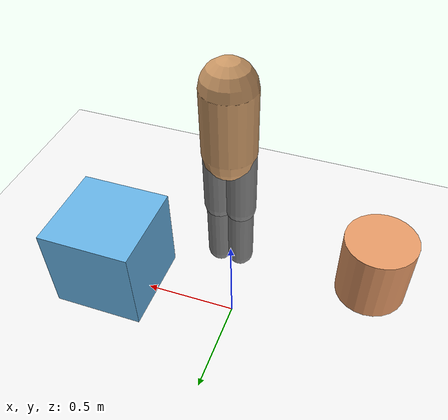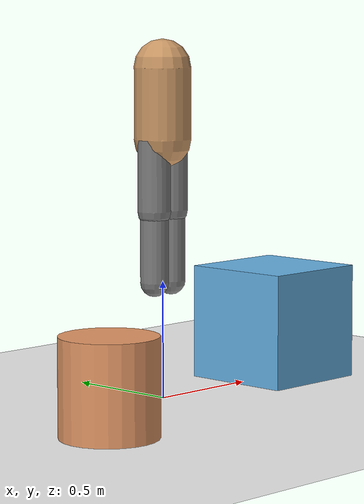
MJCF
<mujoco model="humanoid_room">
  <option timestep="0.002"/>
  <worldbody>
    <geom type="plane" size="8 8 0.1" rgba="0.95 0.95 0.95 1"/>
    <geom type="box" pos="0.7 0.0 0.25" size="0.25 0.25 0.25" rgba="0.4 0.7 0.9 1"/>
    <geom type="cylinder" pos="-0.7 -0.4 0.2" size="0.2 0.2" rgba="0.9 0.6 0.4 1"/>
    <body name="torso" pos="0 0 1.1">
      <joint name="root" type="free"/>
      <geom type="capsule" fromto="0 0 0 0 0 0.3" size="0.12" rgba="0.8 0.6 0.4 1"/>
      <body name="thigh_l" pos="0.05 0 0">
        <joint name="thigh_l_joint" type="hinge" axis="1 0 0" range="-45 45"/>
        <geom type="capsule" fromto="0 0 0 0 0 -0.3" size="0.07"/>
        <body name="shank_l" pos="0 0 -0.3">
          <joint name="shank_l_joint" type="hinge" axis="1 0 0" range="-90 0"/>
          <geom type="capsule" fromto="0 0 0 0 0 -0.3" size="0.06"/>
        </body>
      </body>
      <body name="thigh_r" pos="-0.05 0 0">
        <joint name="thigh_r_joint" type="hinge" axis="1 0 0" range="-45 45"/>
        <geom type="capsule" fromto="0 0 0 0 0 -0.3" size="0.07"/>
        <body name="shank_r" pos="0 0 -0.3">
          <joint name="shank_r_joint" type="hinge" axis="1 0 0" range="-90 0"/>
          <geom type="capsule" fromto="0 0 0 0 0 -0.3" size="0.06"/>
        </body>
      </body>
    </body>
  </worldbody>
  <actuator>
    <motor joint="thigh_l_joint" gear="80"/>
    <motor joint="shank_l_joint" gear="60"/>
    <motor joint="thigh_r_joint" gear="80"/>
    <motor joint="shank_r_joint" gear="60"/>
  </actuator>
</mujoco>
